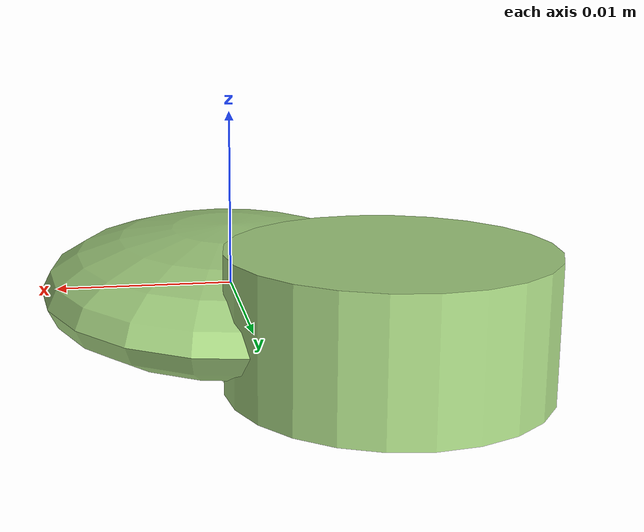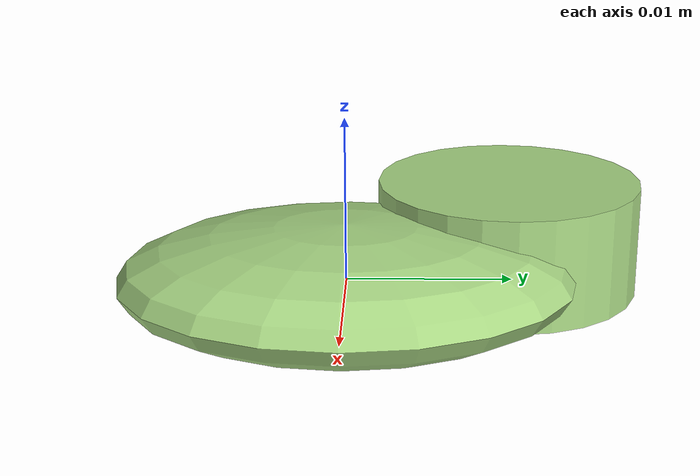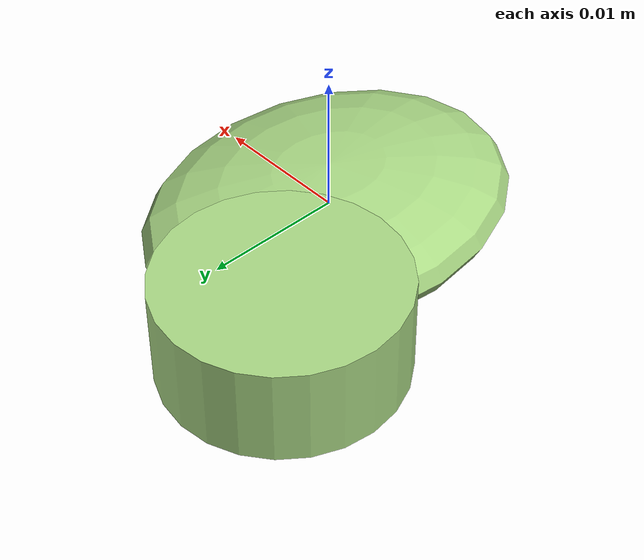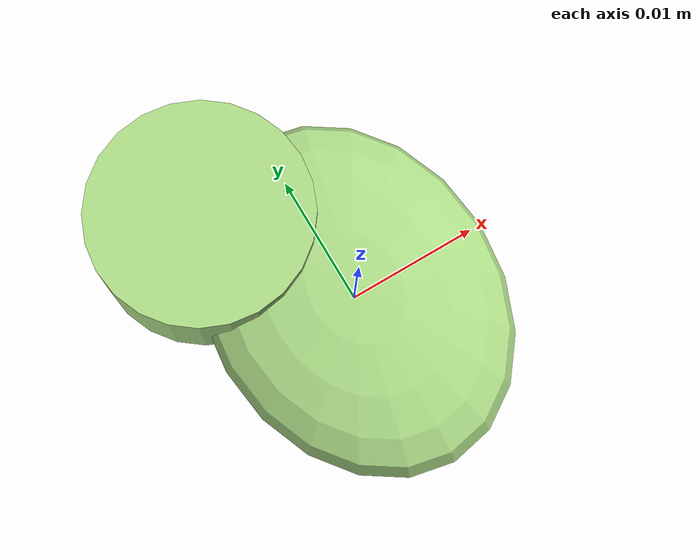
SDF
<?xml version="1.0" ?>
<!-- |    This document was autogenerated by xmacro from data/veggie_template/veggie_base.sdf.xacro  | -->
<!-- |    EDITING THIS FILE BY HAND IS NOT RECOMMENDED                                               | -->
<sdf version="1.8">
	<!-- Parameters -->
	<!-- Base -->
	<!-- Joint 0 -->
	<!-- Link 1 -->
	<!-- Joint 1 -->
	<!-- Link 2 -->
	<!-- Primitives -->
	<!-- All dimensions are half -->
	<!-- Object -->
	<model name="veggie">
		<!-- link0 -->
		<link name="link0">
			<inertial>
				<mass>0.0022043806853937428</mass>
				<inertia>
					<ixx>9.139092163164458e-08</ixx>
					<ixy>0</ixy>
					<ixz>0</ixz>
					<iyy>5.7295945187055055e-08</iyy>
					<iyz>0</iyz>
					<izz>1.380827512312141e-07</izz>
				</inertia>
			</inertial>
			<visual name="link0_visual">
				<pose>0 0 0 0 0 0</pose>
				<geometry>
					<ellipsoid>
						<radii>0.010859700506072453 0.013973821512877162 0.003467878971730682</radii>
					</ellipsoid>
				</geometry>
				<material>
					<ambient>0.659 0.839 0.514 1</ambient>
					<diffuse>0.659 0.839 0.514 1</diffuse>
					<specular>0 0 0 0</specular>
					<emissive>0 0 0 1</emissive>
				</material>
			</visual>
			<collision name="link0_collision">
				<pose>0 0 0 0 0 0 </pose>
				<geometry>
					<ellipsoid>
						<radii>0.010859700506072453 0.013973821512877162 0.003467878971730682</radii>
					</ellipsoid>
				</geometry>
			</collision>
		</link>
		<!-- link1 -->
		<joint name="joint0" type="fixed">
			<pose relative_to="link0">-0.0068729997008542005 0.010273126853933705 0.0005771637928867992 0.0 0.0 0.0</pose>
			<parent>link0</parent>
			<child>link1</child>
		</joint>
		<link name="link1">
			<pose relative_to="joint0">0 0 0 0 0 0</pose>
			<inertial>
				<mass>0.0015934288733950382</mass>
				<inertia>
					<ixx>3.499715052347348e-08</ixx>
					<ixy>0</ixy>
					<ixz>0</ixz>
					<iyy>3.499715052347348e-08</iyy>
					<iyz>0</iyz>
					<izz>5.632489695312227e-08</izz>
				</inertia>
			</inertial>
			<visual name="link1_visual">
				<pose>0 0 0 0 0 0</pose>
				<geometry>
					<cylinder>
						<radius>0.008408119191823462</radius>
						<length>0.0071743750310667345</length>
					</cylinder>
				</geometry>
				<material>
					<ambient>0.659 0.839 0.514 1</ambient>
					<diffuse>0.659 0.839 0.514 1</diffuse>
					<specular>0 0 0 0</specular>
					<emissive>0 0 0 1</emissive>
				</material>
			</visual>
			<collision name="link1_collision">
				<pose>0 0 0 0 0 0 </pose>
				<geometry>
					<cylinder>
						<radius>0.008408119191823462</radius>
						<length>0.0071743750310667345</length>
					</cylinder>
				</geometry>
			</collision>
		</link>
		<!-- link2 -->
	</model>
</sdf>
